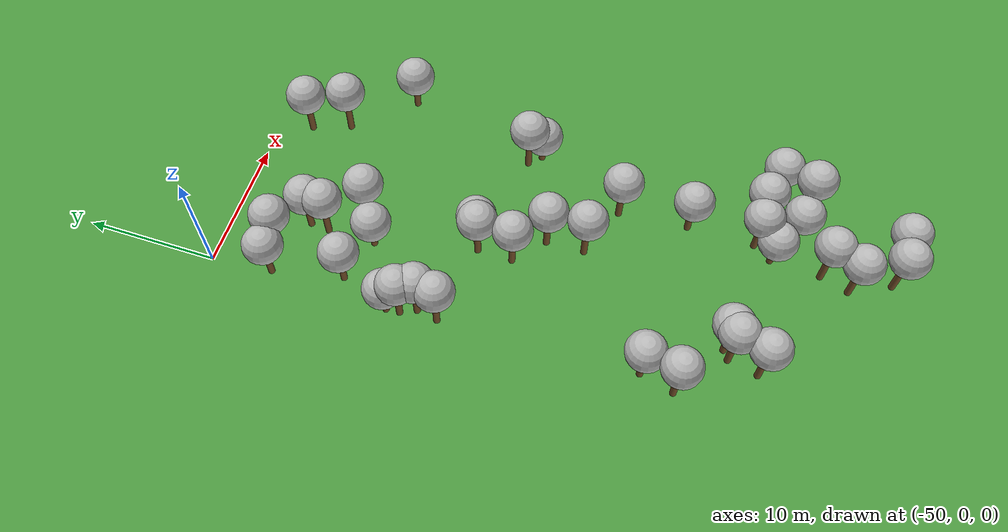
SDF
<sdf version="1.5">
 <world name="default">
  <model name="tree_simple481">
   <static>1</static>
   <link name="link">
    <pose>0 0 0.1 0 -0 0</pose>
    <collision name="collision_trunk">
     <pose>0 0 2 0 -0 0</pose>
     <geometry><cylinder><radius>0.25</radius><length>4</length></cylinder></geometry>
    </collision>
    <collision name="collision_treetop">
     <pose>0 0 5.2 0 -0 0</pose>
     <geometry><sphere><radius>1.5</radius></sphere></geometry>
    </collision>
    <visual name="trunk">
     <pose>0 0 2 0 -0 0</pose>
     <geometry><cylinder><radius>0.25</radius><length>4</length></cylinder></geometry>
     <material>
      <script>
       <uri>model://tree_simple/scripts</uri>
       <uri>model://tree_simple/materials/textures</uri>
       <name>TreeSimple/Trunk</name>
      </script>
     </material>
    </visual>
    <visual name="treetop">
     <pose>0 0 5.2 0 -0 0</pose>
     <geometry><sphere><radius>1.5</radius></sphere></geometry>
     <material>
      <script>
       <uri>model://tree_simple/scripts</uri>
       <uri>model://tree_simple/materials/textures</uri>
       <name>TreeSimple/Treetop</name>
      </script>
     </material>
    </visual>
   </link>
   <pose>-37.2553351017 -39.4739685818 -2.313164512455125 0 -0 0</pose>
  </model>
  <model name="tree_simple438">
   <static>1</static>
   <link name="link">
    <pose>0 0 0.1 0 -0 0</pose>
    <collision name="collision_trunk">
     <pose>0 0 2 0 -0 0</pose>
     <geometry><cylinder><radius>0.25</radius><length>4</length></cylinder></geometry>
    </collision>
    <collision name="collision_treetop">
     <pose>0 0 5.2 0 -0 0</pose>
     <geometry><sphere><radius>1.5</radius></sphere></geometry>
    </collision>
    <visual name="trunk">
     <pose>0 0 2 0 -0 0</pose>
     <geometry><cylinder><radius>0.25</radius><length>4</length></cylinder></geometry>
     <material>
      <script>
       <uri>model://tree_simple/scripts</uri>
       <uri>model://tree_simple/materials/textures</uri>
       <name>TreeSimple/Trunk</name>
      </script>
     </material>
    </visual>
    <visual name="treetop">
     <pose>0 0 5.2 0 -0 0</pose>
     <geometry><sphere><radius>1.5</radius></sphere></geometry>
     <material>
      <script>
       <uri>model://tree_simple/scripts</uri>
       <uri>model://tree_simple/materials/textures</uri>
       <name>TreeSimple/Treetop</name>
      </script>
     </material>
    </visual>
   </link>
   <pose>-34.2898013361 -38.0039942016 -0.9153806781596349 0 -0 0</pose>
  </model>
  <model name="tree_simple434">
   <static>1</static>
   <link name="link">
    <pose>0 0 0.1 0 -0 0</pose>
    <collision name="collision_trunk">
     <pose>0 0 2 0 -0 0</pose>
     <geometry><cylinder><radius>0.25</radius><length>4</length></cylinder></geometry>
    </collision>
    <collision name="collision_treetop">
     <pose>0 0 5.2 0 -0 0</pose>
     <geometry><sphere><radius>1.5</radius></sphere></geometry>
    </collision>
    <visual name="trunk">
     <pose>0 0 2 0 -0 0</pose>
     <geometry><cylinder><radius>0.25</radius><length>4</length></cylinder></geometry>
     <material>
      <script>
       <uri>model://tree_simple/scripts</uri>
       <uri>model://tree_simple/materials/textures</uri>
       <name>TreeSimple/Trunk</name>
      </script>
     </material>
    </visual>
    <visual name="treetop">
     <pose>0 0 5.2 0 -0 0</pose>
     <geometry><sphere><radius>1.5</radius></sphere></geometry>
     <material>
      <script>
       <uri>model://tree_simple/scripts</uri>
       <uri>model://tree_simple/materials/textures</uri>
       <name>TreeSimple/Treetop</name>
      </script>
     </material>
    </visual>
   </link>
   <pose>-43.1297442783 -18.5304452852 -0.9366440924964892 0 -0 0</pose>
  </model>
  <model name="tree_simple416">
   <static>1</static>
   <link name="link">
    <pose>0 0 0.1 0 -0 0</pose>
    <collision name="collision_trunk">
     <pose>0 0 2 0 -0 0</pose>
     <geometry><cylinder><radius>0.25</radius><length>4</length></cylinder></geometry>
    </collision>
    <collision name="collision_treetop">
     <pose>0 0 5.2 0 -0 0</pose>
     <geometry><sphere><radius>1.5</radius></sphere></geometry>
    </collision>
    <visual name="trunk">
     <pose>0 0 2 0 -0 0</pose>
     <geometry><cylinder><radius>0.25</radius><length>4</length></cylinder></geometry>
     <material>
      <script>
       <uri>model://tree_simple/scripts</uri>
       <uri>model://tree_simple/materials/textures</uri>
       <name>TreeSimple/Trunk</name>
      </script>
     </material>
    </visual>
    <visual name="treetop">
     <pose>0 0 5.2 0 -0 0</pose>
     <geometry><sphere><radius>1.5</radius></sphere></geometry>
     <material>
      <script>
       <uri>model://tree_simple/scripts</uri>
       <uri>model://tree_simple/materials/textures</uri>
       <name>TreeSimple/Treetop</name>
      </script>
     </material>
    </visual>
   </link>
   <pose>-31.2795871631 -38.7286210433 -1.627771721147181 0 -0 0</pose>
  </model>
  <model name="tree_simple411">
   <static>1</static>
   <link name="link">
    <pose>0 0 0.1 0 -0 0</pose>
    <collision name="collision_trunk">
     <pose>0 0 2 0 -0 0</pose>
     <geometry><cylinder><radius>0.25</radius><length>4</length></cylinder></geometry>
    </collision>
    <collision name="collision_treetop">
     <pose>0 0 5.2 0 -0 0</pose>
     <geometry><sphere><radius>1.5</radius></sphere></geometry>
    </collision>
    <visual name="trunk">
     <pose>0 0 2 0 -0 0</pose>
     <geometry><cylinder><radius>0.25</radius><length>4</length></cylinder></geometry>
     <material>
      <script>
       <uri>model://tree_simple/scripts</uri>
       <uri>model://tree_simple/materials/textures</uri>
       <name>TreeSimple/Trunk</name>
      </script>
     </material>
    </visual>
    <visual name="treetop">
     <pose>0 0 5.2 0 -0 0</pose>
     <geometry><sphere><radius>1.5</radius></sphere></geometry>
     <material>
      <script>
       <uri>model://tree_simple/scripts</uri>
       <uri>model://tree_simple/materials/textures</uri>
       <name>TreeSimple/Treetop</name>
      </script>
     </material>
    </visual>
   </link>
   <pose>-32.1703266052 -41.1753069034 -0.9134328862668214 0 -0 0</pose>
  </model>
  <model name="tree_simple404">
   <static>1</static>
   <link name="link">
    <pose>0 0 0.1 0 -0 0</pose>
    <collision name="collision_trunk">
     <pose>0 0 2 0 -0 0</pose>
     <geometry><cylinder><radius>0.25</radius><length>4</length></cylinder></geometry>
    </collision>
    <collision name="collision_treetop">
     <pose>0 0 5.2 0 -0 0</pose>
     <geometry><sphere><radius>1.5</radius></sphere></geometry>
    </collision>
    <visual name="trunk">
     <pose>0 0 2 0 -0 0</pose>
     <geometry><cylinder><radius>0.25</radius><length>4</length></cylinder></geometry>
     <material>
      <script>
       <uri>model://tree_simple/scripts</uri>
       <uri>model://tree_simple/materials/textures</uri>
       <name>TreeSimple/Trunk</name>
      </script>
     </material>
    </visual>
    <visual name="treetop">
     <pose>0 0 5.2 0 -0 0</pose>
     <geometry><sphere><radius>1.5</radius></sphere></geometry>
     <material>
      <script>
       <uri>model://tree_simple/scripts</uri>
       <uri>model://tree_simple/materials/textures</uri>
       <name>TreeSimple/Treetop</name>
      </script>
     </material>
    </visual>
   </link>
   <pose>-45.4192895763 -37.6687183978 -1.0170877941080163 0 -0 0</pose>
  </model>
  <model name="tree_simple403">
   <static>1</static>
   <link name="link">
    <pose>0 0 0.1 0 -0 0</pose>
    <collision name="collision_trunk">
     <pose>0 0 2 0 -0 0</pose>
     <geometry><cylinder><radius>0.25</radius><length>4</length></cylinder></geometry>
    </collision>
    <collision name="collision_treetop">
     <pose>0 0 5.2 0 -0 0</pose>
     <geometry><sphere><radius>1.5</radius></sphere></geometry>
    </collision>
    <visual name="trunk">
     <pose>0 0 2 0 -0 0</pose>
     <geometry><cylinder><radius>0.25</radius><length>4</length></cylinder></geometry>
     <material>
      <script>
       <uri>model://tree_simple/scripts</uri>
       <uri>model://tree_simple/materials/textures</uri>
       <name>TreeSimple/Trunk</name>
      </script>
     </material>
    </visual>
    <visual name="treetop">
     <pose>0 0 5.2 0 -0 0</pose>
     <geometry><sphere><radius>1.5</radius></sphere></geometry>
     <material>
      <script>
       <uri>model://tree_simple/scripts</uri>
       <uri>model://tree_simple/materials/textures</uri>
       <name>TreeSimple/Treetop</name>
      </script>
     </material>
    </visual>
   </link>
   <pose>-49.5316989744 -17.555694289 -0.7443259098808109 0 -0 0</pose>
  </model>
  <model name="tree_simple396">
   <static>1</static>
   <link name="link">
    <pose>0 0 0.1 0 -0 0</pose>
    <collision name="collision_trunk">
     <pose>0 0 2 0 -0 0</pose>
     <geometry><cylinder><radius>0.25</radius><length>4</length></cylinder></geometry>
    </collision>
    <collision name="collision_treetop">
     <pose>0 0 5.2 0 -0 0</pose>
     <geometry><sphere><radius>1.5</radius></sphere></geometry>
    </collision>
    <visual name="trunk">
     <pose>0 0 2 0 -0 0</pose>
     <geometry><cylinder><radius>0.25</radius><length>4</length></cylinder></geometry>
     <material>
      <script>
       <uri>model://tree_simple/scripts</uri>
       <uri>model://tree_simple/materials/textures</uri>
       <name>TreeSimple/Trunk</name>
      </script>
     </material>
    </visual>
    <visual name="treetop">
     <pose>0 0 5.2 0 -0 0</pose>
     <geometry><sphere><radius>1.5</radius></sphere></geometry>
     <material>
      <script>
       <uri>model://tree_simple/scripts</uri>
       <uri>model://tree_simple/materials/textures</uri>
       <name>TreeSimple/Treetop</name>
      </script>
     </material>
    </visual>
   </link>
   <pose>-34.4954871255 -19.8377607827 -0.8826998932593024 0 -0 0</pose>
  </model>
  <model name="tree_simple375">
   <static>1</static>
   <link name="link">
    <pose>0 0 0.1 0 -0 0</pose>
    <collision name="collision_trunk">
     <pose>0 0 2 0 -0 0</pose>
     <geometry><cylinder><radius>0.25</radius><length>4</length></cylinder></geometry>
    </collision>
    <collision name="collision_treetop">
     <pose>0 0 5.2 0 -0 0</pose>
     <geometry><sphere><radius>1.5</radius></sphere></geometry>
    </collision>
    <visual name="trunk">
     <pose>0 0 2 0 -0 0</pose>
     <geometry><cylinder><radius>0.25</radius><length>4</length></cylinder></geometry>
     <material>
      <script>
       <uri>model://tree_simple/scripts</uri>
       <uri>model://tree_simple/materials/textures</uri>
       <name>TreeSimple/Trunk</name>
      </script>
     </material>
    </visual>
    <visual name="treetop">
     <pose>0 0 5.2 0 -0 0</pose>
     <geometry><sphere><radius>1.5</radius></sphere></geometry>
     <material>
      <script>
       <uri>model://tree_simple/scripts</uri>
       <uri>model://tree_simple/materials/textures</uri>
       <name>TreeSimple/Treetop</name>
      </script>
     </material>
    </visual>
   </link>
   <pose>-48.3845088934 -9.9079742 -1.4542005847848463 0 -0 0</pose>
  </model>
  <model name="tree_simple373">
   <static>1</static>
   <link name="link">
    <pose>0 0 0.1 0 -0 0</pose>
    <collision name="collision_trunk">
     <pose>0 0 2 0 -0 0</pose>
     <geometry><cylinder><radius>0.25</radius><length>4</length></cylinder></geometry>
    </collision>
    <collision name="collision_treetop">
     <pose>0 0 5.2 0 -0 0</pose>
     <geometry><sphere><radius>1.5</radius></sphere></geometry>
    </collision>
    <visual name="trunk">
     <pose>0 0 2 0 -0 0</pose>
     <geometry><cylinder><radius>0.25</radius><length>4</length></cylinder></geometry>
     <material>
      <script>
       <uri>model://tree_simple/scripts</uri>
       <uri>model://tree_simple/materials/textures</uri>
       <name>TreeSimple/Trunk</name>
      </script>
     </material>
    </visual>
    <visual name="treetop">
     <pose>0 0 5.2 0 -0 0</pose>
     <geometry><sphere><radius>1.5</radius></sphere></geometry>
     <material>
      <script>
       <uri>model://tree_simple/scripts</uri>
       <uri>model://tree_simple/materials/textures</uri>
       <name>TreeSimple/Treetop</name>
      </script>
     </material>
    </visual>
   </link>
   <pose>-43.1842610619 -21.2191114712 -0.9189660849182042 0 -0 0</pose>
  </model>
  <model name="tree_simple370">
   <static>1</static>
   <link name="link">
    <pose>0 0 0.1 0 -0 0</pose>
    <collision name="collision_trunk">
     <pose>0 0 2 0 -0 0</pose>
     <geometry><cylinder><radius>0.25</radius><length>4</length></cylinder></geometry>
    </collision>
    <collision name="collision_treetop">
     <pose>0 0 5.2 0 -0 0</pose>
     <geometry><sphere><radius>1.5</radius></sphere></geometry>
    </collision>
    <visual name="trunk">
     <pose>0 0 2 0 -0 0</pose>
     <geometry><cylinder><radius>0.25</radius><length>4</length></cylinder></geometry>
     <material>
      <script>
       <uri>model://tree_simple/scripts</uri>
       <uri>model://tree_simple/materials/textures</uri>
       <name>TreeSimple/Trunk</name>
      </script>
     </material>
    </visual>
    <visual name="treetop">
     <pose>0 0 5.2 0 -0 0</pose>
     <geometry><sphere><radius>1.5</radius></sphere></geometry>
     <material>
      <script>
       <uri>model://tree_simple/scripts</uri>
       <uri>model://tree_simple/materials/textures</uri>
       <name>TreeSimple/Treetop</name>
      </script>
     </material>
    </visual>
   </link>
   <pose>-36.749040883 -27.7198172667 -1.007611005489163 0 -0 0</pose>
  </model>
  <model name="tree_simple369">
   <static>1</static>
   <link name="link">
    <pose>0 0 0.1 0 -0 0</pose>
    <collision name="collision_trunk">
     <pose>0 0 2 0 -0 0</pose>
     <geometry><cylinder><radius>0.25</radius><length>4</length></cylinder></geometry>
    </collision>
    <collision name="collision_treetop">
     <pose>0 0 5.2 0 -0 0</pose>
     <geometry><sphere><radius>1.5</radius></sphere></geometry>
    </collision>
    <visual name="trunk">
     <pose>0 0 2 0 -0 0</pose>
     <geometry><cylinder><radius>0.25</radius><length>4</length></cylinder></geometry>
     <material>
      <script>
       <uri>model://tree_simple/scripts</uri>
       <uri>model://tree_simple/materials/textures</uri>
       <name>TreeSimple/Trunk</name>
      </script>
     </material>
    </visual>
    <visual name="treetop">
     <pose>0 0 5.2 0 -0 0</pose>
     <geometry><sphere><radius>1.5</radius></sphere></geometry>
     <material>
      <script>
       <uri>model://tree_simple/scripts</uri>
       <uri>model://tree_simple/materials/textures</uri>
       <name>TreeSimple/Treetop</name>
      </script>
     </material>
    </visual>
   </link>
   <pose>-40.8904214301 -23.21757156 -0.949616824688744 0 -0 0</pose>
  </model>
  <model name="tree_simple341">
   <static>1</static>
   <link name="link">
    <pose>0 0 0.1 0 -0 0</pose>
    <collision name="collision_trunk">
     <pose>0 0 2 0 -0 0</pose>
     <geometry><cylinder><radius>0.25</radius><length>4</length></cylinder></geometry>
    </collision>
    <collision name="collision_treetop">
     <pose>0 0 5.2 0 -0 0</pose>
     <geometry><sphere><radius>1.5</radius></sphere></geometry>
    </collision>
    <visual name="trunk">
     <pose>0 0 2 0 -0 0</pose>
     <geometry><cylinder><radius>0.25</radius><length>4</length></cylinder></geometry>
     <material>
      <script>
       <uri>model://tree_simple/scripts</uri>
       <uri>model://tree_simple/materials/textures</uri>
       <name>TreeSimple/Trunk</name>
      </script>
     </material>
    </visual>
    <visual name="treetop">
     <pose>0 0 5.2 0 -0 0</pose>
     <geometry><sphere><radius>1.5</radius></sphere></geometry>
     <material>
      <script>
       <uri>model://tree_simple/scripts</uri>
       <uri>model://tree_simple/materials/textures</uri>
       <name>TreeSimple/Treetop</name>
      </script>
     </material>
    </visual>
   </link>
   <pose>-49.5073976614 -4.58498276765 -1.3666572870901617 0 -0 0</pose>
  </model>
  <model name="tree_simple326">
   <static>1</static>
   <link name="link">
    <pose>0 0 0.1 0 -0 0</pose>
    <collision name="collision_trunk">
     <pose>0 0 2 0 -0 0</pose>
     <geometry><cylinder><radius>0.25</radius><length>4</length></cylinder></geometry>
    </collision>
    <collision name="collision_treetop">
     <pose>0 0 5.2 0 -0 0</pose>
     <geometry><sphere><radius>1.5</radius></sphere></geometry>
    </collision>
    <visual name="trunk">
     <pose>0 0 2 0 -0 0</pose>
     <geometry><cylinder><radius>0.25</radius><length>4</length></cylinder></geometry>
     <material>
      <script>
       <uri>model://tree_simple/scripts</uri>
       <uri>model://tree_simple/materials/textures</uri>
       <name>TreeSimple/Trunk</name>
      </script>
     </material>
    </visual>
    <visual name="treetop">
     <pose>0 0 5.2 0 -0 0</pose>
     <geometry><sphere><radius>1.5</radius></sphere></geometry>
     <material>
      <script>
       <uri>model://tree_simple/scripts</uri>
       <uri>model://tree_simple/materials/textures</uri>
       <name>TreeSimple/Treetop</name>
      </script>
     </material>
    </visual>
   </link>
   <pose>-44.8519520945 -5.80439962373 -1.1698280542827606 0 -0 0</pose>
  </model>
  <model name="tree_simple323">
   <static>1</static>
   <link name="link">
    <pose>0 0 0.1 0 -0 0</pose>
    <collision name="collision_trunk">
     <pose>0 0 2 0 -0 0</pose>
     <geometry><cylinder><radius>0.25</radius><length>4</length></cylinder></geometry>
    </collision>
    <collision name="collision_treetop">
     <pose>0 0 5.2 0 -0 0</pose>
     <geometry><sphere><radius>1.5</radius></sphere></geometry>
    </collision>
    <visual name="trunk">
     <pose>0 0 2 0 -0 0</pose>
     <geometry><cylinder><radius>0.25</radius><length>4</length></cylinder></geometry>
     <material>
      <script>
       <uri>model://tree_simple/scripts</uri>
       <uri>model://tree_simple/materials/textures</uri>
       <name>TreeSimple/Trunk</name>
      </script>
     </material>
    </visual>
    <visual name="treetop">
     <pose>0 0 5.2 0 -0 0</pose>
     <geometry><sphere><radius>1.5</radius></sphere></geometry>
     <material>
      <script>
       <uri>model://tree_simple/scripts</uri>
       <uri>model://tree_simple/materials/textures</uri>
       <name>TreeSimple/Treetop</name>
      </script>
     </material>
    </visual>
   </link>
   <pose>-44.9542016132 -10.9647646888 -2.196456673396539 0 -0 0</pose>
  </model>
  <model name="tree_simple318">
   <static>1</static>
   <link name="link">
    <pose>0 0 0.1 0 -0 0</pose>
    <collision name="collision_trunk">
     <pose>0 0 2 0 -0 0</pose>
     <geometry><cylinder><radius>0.25</radius><length>4</length></cylinder></geometry>
    </collision>
    <collision name="collision_treetop">
     <pose>0 0 5.2 0 -0 0</pose>
     <geometry><sphere><radius>1.5</radius></sphere></geometry>
    </collision>
    <visual name="trunk">
     <pose>0 0 2 0 -0 0</pose>
     <geometry><cylinder><radius>0.25</radius><length>4</length></cylinder></geometry>
     <material>
      <script>
       <uri>model://tree_simple/scripts</uri>
       <uri>model://tree_simple/materials/textures</uri>
       <name>TreeSimple/Trunk</name>
      </script>
     </material>
    </visual>
    <visual name="treetop">
     <pose>0 0 5.2 0 -0 0</pose>
     <geometry><sphere><radius>1.5</radius></sphere></geometry>
     <material>
      <script>
       <uri>model://tree_simple/scripts</uri>
       <uri>model://tree_simple/materials/textures</uri>
       <name>TreeSimple/Treetop</name>
      </script>
     </material>
    </visual>
   </link>
   <pose>-35.5307244579 -5.31130875944 -0.7693628341063821 0 -0 0</pose>
  </model>
  <model name="tree_simple312">
   <static>1</static>
   <link name="link">
    <pose>0 0 0.1 0 -0 0</pose>
    <collision name="collision_trunk">
     <pose>0 0 2 0 -0 0</pose>
     <geometry><cylinder><radius>0.25</radius><length>4</length></cylinder></geometry>
    </collision>
    <collision name="collision_treetop">
     <pose>0 0 5.2 0 -0 0</pose>
     <geometry><sphere><radius>1.5</radius></sphere></geometry>
    </collision>
    <visual name="trunk">
     <pose>0 0 2 0 -0 0</pose>
     <geometry><cylinder><radius>0.25</radius><length>4</length></cylinder></geometry>
     <material>
      <script>
       <uri>model://tree_simple/scripts</uri>
       <uri>model://tree_simple/materials/textures</uri>
       <name>TreeSimple/Trunk</name>
      </script>
     </material>
    </visual>
    <visual name="treetop">
     <pose>0 0 5.2 0 -0 0</pose>
     <geometry><sphere><radius>1.5</radius></sphere></geometry>
     <material>
      <script>
       <uri>model://tree_simple/scripts</uri>
       <uri>model://tree_simple/materials/textures</uri>
       <name>TreeSimple/Treetop</name>
      </script>
     </material>
    </visual>
   </link>
   <pose>-49.0127914394 -32.4704975261 -1.4051616145183206 0 -0 0</pose>
  </model>
  <model name="tree_simple259">
   <static>1</static>
   <link name="link">
    <pose>0 0 0.1 0 -0 0</pose>
    <collision name="collision_trunk">
     <pose>0 0 2 0 -0 0</pose>
     <geometry><cylinder><radius>0.25</radius><length>4</length></cylinder></geometry>
    </collision>
    <collision name="collision_treetop">
     <pose>0 0 5.2 0 -0 0</pose>
     <geometry><sphere><radius>1.5</radius></sphere></geometry>
    </collision>
    <visual name="trunk">
     <pose>0 0 2 0 -0 0</pose>
     <geometry><cylinder><radius>0.25</radius><length>4</length></cylinder></geometry>
     <material>
      <script>
       <uri>model://tree_simple/scripts</uri>
       <uri>model://tree_simple/materials/textures</uri>
       <name>TreeSimple/Trunk</name>
      </script>
     </material>
    </visual>
    <visual name="treetop">
     <pose>0 0 5.2 0 -0 0</pose>
     <geometry><sphere><radius>1.5</radius></sphere></geometry>
     <material>
      <script>
       <uri>model://tree_simple/scripts</uri>
       <uri>model://tree_simple/materials/textures</uri>
       <name>TreeSimple/Treetop</name>
      </script>
     </material>
    </visual>
   </link>
   <pose>-49.2281564384 -15.9494105315 -0.9402194334918634 0 -0 0</pose>
  </model>
  <model name="tree_simple250">
   <static>1</static>
   <link name="link">
    <pose>0 0 0.1 0 -0 0</pose>
    <collision name="collision_trunk">
     <pose>0 0 2 0 -0 0</pose>
     <geometry><cylinder><radius>0.25</radius><length>4</length></cylinder></geometry>
    </collision>
    <collision name="collision_treetop">
     <pose>0 0 5.2 0 -0 0</pose>
     <geometry><sphere><radius>1.5</radius></sphere></geometry>
    </collision>
    <visual name="trunk">
     <pose>0 0 2 0 -0 0</pose>
     <geometry><cylinder><radius>0.25</radius><length>4</length></cylinder></geometry>
     <material>
      <script>
       <uri>model://tree_simple/scripts</uri>
       <uri>model://tree_simple/materials/textures</uri>
       <name>TreeSimple/Trunk</name>
      </script>
     </material>
    </visual>
    <visual name="treetop">
     <pose>0 0 5.2 0 -0 0</pose>
     <geometry><sphere><radius>1.5</radius></sphere></geometry>
     <material>
      <script>
       <uri>model://tree_simple/scripts</uri>
       <uri>model://tree_simple/materials/textures</uri>
       <name>TreeSimple/Treetop</name>
      </script>
     </material>
    </visual>
   </link>
   <pose>-33.6030138898 -48.597626204 -2.32099633214339 0 -0 0</pose>
  </model>
  <model name="tree_simple241">
   <static>1</static>
   <link name="link">
    <pose>0 0 0.1 0 -0 0</pose>
    <collision name="collision_trunk">
     <pose>0 0 2 0 -0 0</pose>
     <geometry><cylinder><radius>0.25</radius><length>4</length></cylinder></geometry>
    </collision>
    <collision name="collision_treetop">
     <pose>0 0 5.2 0 -0 0</pose>
     <geometry><sphere><radius>1.5</radius></sphere></geometry>
    </collision>
    <visual name="trunk">
     <pose>0 0 2 0 -0 0</pose>
     <geometry><cylinder><radius>0.25</radius><length>4</length></cylinder></geometry>
     <material>
      <script>
       <uri>model://tree_simple/scripts</uri>
       <uri>model://tree_simple/materials/textures</uri>
       <name>TreeSimple/Trunk</name>
      </script>
     </material>
    </visual>
    <visual name="treetop">
     <pose>0 0 5.2 0 -0 0</pose>
     <geometry><sphere><radius>1.5</radius></sphere></geometry>
     <material>
      <script>
       <uri>model://tree_simple/scripts</uri>
       <uri>model://tree_simple/materials/textures</uri>
       <name>TreeSimple/Treetop</name>
      </script>
     </material>
    </visual>
   </link>
   <pose>-37.439891657 -43.2397532509 -0.7600741558034647 0 -0 0</pose>
  </model>
  <model name="tree_simple240">
   <static>1</static>
   <link name="link">
    <pose>0 0 0.1 0 -0 0</pose>
    <collision name="collision_trunk">
     <pose>0 0 2 0 -0 0</pose>
     <geometry><cylinder><radius>0.25</radius><length>4</length></cylinder></geometry>
    </collision>
    <collision name="collision_treetop">
     <pose>0 0 5.2 0 -0 0</pose>
     <geometry><sphere><radius>1.5</radius></sphere></geometry>
    </collision>
    <visual name="trunk">
     <pose>0 0 2 0 -0 0</pose>
     <geometry><cylinder><radius>0.25</radius><length>4</length></cylinder></geometry>
     <material>
      <script>
       <uri>model://tree_simple/scripts</uri>
       <uri>model://tree_simple/materials/textures</uri>
       <name>TreeSimple/Trunk</name>
      </script>
     </material>
    </visual>
    <visual name="treetop">
     <pose>0 0 5.2 0 -0 0</pose>
     <geometry><sphere><radius>1.5</radius></sphere></geometry>
     <material>
      <script>
       <uri>model://tree_simple/scripts</uri>
       <uri>model://tree_simple/materials/textures</uri>
       <name>TreeSimple/Treetop</name>
      </script>
     </material>
    </visual>
   </link>
   <pose>-49.7673729573 -14.7908164176 -0.9803421155893535 0 -0 0</pose>
  </model>
  <model name="tree_simple239">
   <static>1</static>
   <link name="link">
    <pose>0 0 0.1 0 -0 0</pose>
    <collision name="collision_trunk">
     <pose>0 0 2 0 -0 0</pose>
     <geometry><cylinder><radius>0.25</radius><length>4</length></cylinder></geometry>
    </collision>
    <collision name="collision_treetop">
     <pose>0 0 5.2 0 -0 0</pose>
     <geometry><sphere><radius>1.5</radius></sphere></geometry>
    </collision>
    <visual name="trunk">
     <pose>0 0 2 0 -0 0</pose>
     <geometry><cylinder><radius>0.25</radius><length>4</length></cylinder></geometry>
     <material>
      <script>
       <uri>model://tree_simple/scripts</uri>
       <uri>model://tree_simple/materials/textures</uri>
       <name>TreeSimple/Trunk</name>
      </script>
     </material>
    </visual>
    <visual name="treetop">
     <pose>0 0 5.2 0 -0 0</pose>
     <geometry><sphere><radius>1.5</radius></sphere></geometry>
     <material>
      <script>
       <uri>model://tree_simple/scripts</uri>
       <uri>model://tree_simple/materials/textures</uri>
       <name>TreeSimple/Treetop</name>
      </script>
     </material>
    </visual>
   </link>
   <pose>-44.9803872855 -7.28495240751 -0.7925013824825821 0 -0 0</pose>
  </model>
  <model name="tree_simple221">
   <static>1</static>
   <link name="link">
    <pose>0 0 0.1 0 -0 0</pose>
    <collision name="collision_trunk">
     <pose>0 0 2 0 -0 0</pose>
     <geometry><cylinder><radius>0.25</radius><length>4</length></cylinder></geometry>
    </collision>
    <collision name="collision_treetop">
     <pose>0 0 5.2 0 -0 0</pose>
     <geometry><sphere><radius>1.5</radius></sphere></geometry>
    </collision>
    <visual name="trunk">
     <pose>0 0 2 0 -0 0</pose>
     <geometry><cylinder><radius>0.25</radius><length>4</length></cylinder></geometry>
     <material>
      <script>
       <uri>model://tree_simple/scripts</uri>
       <uri>model://tree_simple/materials/textures</uri>
       <name>TreeSimple/Trunk</name>
      </script>
     </material>
    </visual>
    <visual name="treetop">
     <pose>0 0 5.2 0 -0 0</pose>
     <geometry><sphere><radius>1.5</radius></sphere></geometry>
     <material>
      <script>
       <uri>model://tree_simple/scripts</uri>
       <uri>model://tree_simple/materials/textures</uri>
       <name>TreeSimple/Treetop</name>
      </script>
     </material>
    </visual>
   </link>
   <pose>-33.630014063 -20.7003393039 -2.4559381929885666 0 -0 0</pose>
  </model>
  <model name="tree_simple220">
   <static>1</static>
   <link name="link">
    <pose>0 0 0.1 0 -0 0</pose>
    <collision name="collision_trunk">
     <pose>0 0 2 0 -0 0</pose>
     <geometry><cylinder><radius>0.25</radius><length>4</length></cylinder></geometry>
    </collision>
    <collision name="collision_treetop">
     <pose>0 0 5.2 0 -0 0</pose>
     <geometry><sphere><radius>1.5</radius></sphere></geometry>
    </collision>
    <visual name="trunk">
     <pose>0 0 2 0 -0 0</pose>
     <geometry><cylinder><radius>0.25</radius><length>4</length></cylinder></geometry>
     <material>
      <script>
       <uri>model://tree_simple/scripts</uri>
       <uri>model://tree_simple/materials/textures</uri>
       <name>TreeSimple/Trunk</name>
      </script>
     </material>
    </visual>
    <visual name="treetop">
     <pose>0 0 5.2 0 -0 0</pose>
     <geometry><sphere><radius>1.5</radius></sphere></geometry>
     <material>
      <script>
       <uri>model://tree_simple/scripts</uri>
       <uri>model://tree_simple/materials/textures</uri>
       <name>TreeSimple/Treetop</name>
      </script>
     </material>
    </visual>
   </link>
   <pose>-36.5535815793 -2.43279627312 -1.0244802533006583 0 -0 0</pose>
  </model>
  <model name="tree_simple212">
   <static>1</static>
   <link name="link">
    <pose>0 0 0.1 0 -0 0</pose>
    <collision name="collision_trunk">
     <pose>0 0 2 0 -0 0</pose>
     <geometry><cylinder><radius>0.25</radius><length>4</length></cylinder></geometry>
    </collision>
    <collision name="collision_treetop">
     <pose>0 0 5.2 0 -0 0</pose>
     <geometry><sphere><radius>1.5</radius></sphere></geometry>
    </collision>
    <visual name="trunk">
     <pose>0 0 2 0 -0 0</pose>
     <geometry><cylinder><radius>0.25</radius><length>4</length></cylinder></geometry>
     <material>
      <script>
       <uri>model://tree_simple/scripts</uri>
       <uri>model://tree_simple/materials/textures</uri>
       <name>TreeSimple/Trunk</name>
      </script>
     </material>
    </visual>
    <visual name="treetop">
     <pose>0 0 5.2 0 -0 0</pose>
     <geometry><sphere><radius>1.5</radius></sphere></geometry>
     <material>
      <script>
       <uri>model://tree_simple/scripts</uri>
       <uri>model://tree_simple/materials/textures</uri>
       <name>TreeSimple/Treetop</name>
      </script>
     </material>
    </visual>
   </link>
   <pose>-40.8079801591 -26.1075975904 -0.714876311338958 0 -0 0</pose>
  </model>
  <model name="tree_simple193">
   <static>1</static>
   <link name="link">
    <pose>0 0 0.1 0 -0 0</pose>
    <collision name="collision_trunk">
     <pose>0 0 2 0 -0 0</pose>
     <geometry><cylinder><radius>0.25</radius><length>4</length></cylinder></geometry>
    </collision>
    <collision name="collision_treetop">
     <pose>0 0 5.2 0 -0 0</pose>
     <geometry><sphere><radius>1.5</radius></sphere></geometry>
    </collision>
    <visual name="trunk">
     <pose>0 0 2 0 -0 0</pose>
     <geometry><cylinder><radius>0.25</radius><length>4</length></cylinder></geometry>
     <material>
      <script>
       <uri>model://tree_simple/scripts</uri>
       <uri>model://tree_simple/materials/textures</uri>
       <name>TreeSimple/Trunk</name>
      </script>
     </material>
    </visual>
    <visual name="treetop">
     <pose>0 0 5.2 0 -0 0</pose>
     <geometry><sphere><radius>1.5</radius></sphere></geometry>
     <material>
      <script>
       <uri>model://tree_simple/scripts</uri>
       <uri>model://tree_simple/materials/textures</uri>
       <name>TreeSimple/Treetop</name>
      </script>
     </material>
    </visual>
   </link>
   <pose>-38.0891263237 -45.387736402 -0.9688991361945178 0 -0 0</pose>
  </model>
  <model name="tree_simple176">
   <static>1</static>
   <link name="link">
    <pose>0 0 0.1 0 -0 0</pose>
    <collision name="collision_trunk">
     <pose>0 0 2 0 -0 0</pose>
     <geometry><cylinder><radius>0.25</radius><length>4</length></cylinder></geometry>
    </collision>
    <collision name="collision_treetop">
     <pose>0 0 5.2 0 -0 0</pose>
     <geometry><sphere><radius>1.5</radius></sphere></geometry>
    </collision>
    <visual name="trunk">
     <pose>0 0 2 0 -0 0</pose>
     <geometry><cylinder><radius>0.25</radius><length>4</length></cylinder></geometry>
     <material>
      <script>
       <uri>model://tree_simple/scripts</uri>
       <uri>model://tree_simple/materials/textures</uri>
       <name>TreeSimple/Trunk</name>
      </script>
     </material>
    </visual>
    <visual name="treetop">
     <pose>0 0 5.2 0 -0 0</pose>
     <geometry><sphere><radius>1.5</radius></sphere></geometry>
     <material>
      <script>
       <uri>model://tree_simple/scripts</uri>
       <uri>model://tree_simple/materials/textures</uri>
       <name>TreeSimple/Treetop</name>
      </script>
     </material>
    </visual>
   </link>
   <pose>-34.4242902166 -40.9558999471 -2.3872662400913205 0 -0 0</pose>
  </model>
  <model name="tree_simple172">
   <static>1</static>
   <link name="link">
    <pose>0 0 0.1 0 -0 0</pose>
    <collision name="collision_trunk">
     <pose>0 0 2 0 -0 0</pose>
     <geometry><cylinder><radius>0.25</radius><length>4</length></cylinder></geometry>
    </collision>
    <collision name="collision_treetop">
     <pose>0 0 5.2 0 -0 0</pose>
     <geometry><sphere><radius>1.5</radius></sphere></geometry>
    </collision>
    <visual name="trunk">
     <pose>0 0 2 0 -0 0</pose>
     <geometry><cylinder><radius>0.25</radius><length>4</length></cylinder></geometry>
     <material>
      <script>
       <uri>model://tree_simple/scripts</uri>
       <uri>model://tree_simple/materials/textures</uri>
       <name>TreeSimple/Trunk</name>
      </script>
     </material>
    </visual>
    <visual name="treetop">
     <pose>0 0 5.2 0 -0 0</pose>
     <geometry><sphere><radius>1.5</radius></sphere></geometry>
     <material>
      <script>
       <uri>model://tree_simple/scripts</uri>
       <uri>model://tree_simple/materials/textures</uri>
       <name>TreeSimple/Treetop</name>
      </script>
     </material>
    </visual>
   </link>
   <pose>-36.3388025574 -38.096874475 -1.265513670634136 0 -0 0</pose>
  </model>
  <model name="tree_simple171">
   <static>1</static>
   <link name="link">
    <pose>0 0 0.1 0 -0 0</pose>
    <collision name="collision_trunk">
     <pose>0 0 2 0 -0 0</pose>
     <geometry><cylinder><radius>0.25</radius><length>4</length></cylinder></geometry>
    </collision>
    <collision name="collision_treetop">
     <pose>0 0 5.2 0 -0 0</pose>
     <geometry><sphere><radius>1.5</radius></sphere></geometry>
    </collision>
    <visual name="trunk">
     <pose>0 0 2 0 -0 0</pose>
     <geometry><cylinder><radius>0.25</radius><length>4</length></cylinder></geometry>
     <material>
      <script>
       <uri>model://tree_simple/scripts</uri>
       <uri>model://tree_simple/materials/textures</uri>
       <name>TreeSimple/Trunk</name>
      </script>
     </material>
    </visual>
    <visual name="treetop">
     <pose>0 0 5.2 0 -0 0</pose>
     <geometry><sphere><radius>1.5</radius></sphere></geometry>
     <material>
      <script>
       <uri>model://tree_simple/scripts</uri>
       <uri>model://tree_simple/materials/textures</uri>
       <name>TreeSimple/Treetop</name>
      </script>
     </material>
    </visual>
   </link>
   <pose>-47.4177148869 -4.27301626353 -0.7047581811777645 0 -0 0</pose>
  </model>
  <model name="tree_simple146">
   <static>1</static>
   <link name="link">
    <pose>0 0 0.1 0 -0 0</pose>
    <collision name="collision_trunk">
     <pose>0 0 2 0 -0 0</pose>
     <geometry><cylinder><radius>0.25</radius><length>4</length></cylinder></geometry>
    </collision>
    <collision name="collision_treetop">
     <pose>0 0 5.2 0 -0 0</pose>
     <geometry><sphere><radius>1.5</radius></sphere></geometry>
    </collision>
    <visual name="trunk">
     <pose>0 0 2 0 -0 0</pose>
     <geometry><cylinder><radius>0.25</radius><length>4</length></cylinder></geometry>
     <material>
      <script>
       <uri>model://tree_simple/scripts</uri>
       <uri>model://tree_simple/materials/textures</uri>
       <name>TreeSimple/Trunk</name>
      </script>
     </material>
    </visual>
    <visual name="treetop">
     <pose>0 0 5.2 0 -0 0</pose>
     <geometry><sphere><radius>1.5</radius></sphere></geometry>
     <material>
      <script>
       <uri>model://tree_simple/scripts</uri>
       <uri>model://tree_simple/materials/textures</uri>
       <name>TreeSimple/Treetop</name>
      </script>
     </material>
    </visual>
   </link>
   <pose>-42.8686467761 -9.68210025238 -0.7750451728388399 0 -0 0</pose>
  </model>
  <model name="tree_simple129">
   <static>1</static>
   <link name="link">
    <pose>0 0 0.1 0 -0 0</pose>
    <collision name="collision_trunk">
     <pose>0 0 2 0 -0 0</pose>
     <geometry><cylinder><radius>0.25</radius><length>4</length></cylinder></geometry>
    </collision>
    <collision name="collision_treetop">
     <pose>0 0 5.2 0 -0 0</pose>
     <geometry><sphere><radius>1.5</radius></sphere></geometry>
    </collision>
    <visual name="trunk">
     <pose>0 0 2 0 -0 0</pose>
     <geometry><cylinder><radius>0.25</radius><length>4</length></cylinder></geometry>
     <material>
      <script>
       <uri>model://tree_simple/scripts</uri>
       <uri>model://tree_simple/materials/textures</uri>
       <name>TreeSimple/Trunk</name>
      </script>
     </material>
    </visual>
    <visual name="treetop">
     <pose>0 0 5.2 0 -0 0</pose>
     <geometry><sphere><radius>1.5</radius></sphere></geometry>
     <material>
      <script>
       <uri>model://tree_simple/scripts</uri>
       <uri>model://tree_simple/materials/textures</uri>
       <name>TreeSimple/Treetop</name>
      </script>
     </material>
    </visual>
   </link>
   <pose>-46.082766629 -38.1150560833 -0.6550352667928161 0 -0 0</pose>
  </model>
  <model name="tree_simple91">
   <static>1</static>
   <link name="link">
    <pose>0 0 0.1 0 -0 0</pose>
    <collision name="collision_trunk">
     <pose>0 0 2 0 -0 0</pose>
     <geometry><cylinder><radius>0.25</radius><length>4</length></cylinder></geometry>
    </collision>
    <collision name="collision_treetop">
     <pose>0 0 5.2 0 -0 0</pose>
     <geometry><sphere><radius>1.5</radius></sphere></geometry>
    </collision>
    <visual name="trunk">
     <pose>0 0 2 0 -0 0</pose>
     <geometry><cylinder><radius>0.25</radius><length>4</length></cylinder></geometry>
     <material>
      <script>
       <uri>model://tree_simple/scripts</uri>
       <uri>model://tree_simple/materials/textures</uri>
       <name>TreeSimple/Trunk</name>
      </script>
     </material>
    </visual>
    <visual name="treetop">
     <pose>0 0 5.2 0 -0 0</pose>
     <geometry><sphere><radius>1.5</radius></sphere></geometry>
     <material>
      <script>
       <uri>model://tree_simple/scripts</uri>
       <uri>model://tree_simple/materials/textures</uri>
       <name>TreeSimple/Treetop</name>
      </script>
     </material>
    </visual>
   </link>
   <pose>-49.8341450527 -13.7707098392 -2.0850228115252243 0 -0 0</pose>
  </model>
  <model name="tree_simple83">
   <static>1</static>
   <link name="link">
    <pose>0 0 0.1 0 -0 0</pose>
    <collision name="collision_trunk">
     <pose>0 0 2 0 -0 0</pose>
     <geometry><cylinder><radius>0.25</radius><length>4</length></cylinder></geometry>
    </collision>
    <collision name="collision_treetop">
     <pose>0 0 5.2 0 -0 0</pose>
     <geometry><sphere><radius>1.5</radius></sphere></geometry>
    </collision>
    <visual name="trunk">
     <pose>0 0 2 0 -0 0</pose>
     <geometry><cylinder><radius>0.25</radius><length>4</length></cylinder></geometry>
     <material>
      <script>
       <uri>model://tree_simple/scripts</uri>
       <uri>model://tree_simple/materials/textures</uri>
       <name>TreeSimple/Trunk</name>
      </script>
     </material>
    </visual>
    <visual name="treetop">
     <pose>0 0 5.2 0 -0 0</pose>
     <geometry><sphere><radius>1.5</radius></sphere></geometry>
     <material>
      <script>
       <uri>model://tree_simple/scripts</uri>
       <uri>model://tree_simple/materials/textures</uri>
       <name>TreeSimple/Treetop</name>
      </script>
     </material>
    </visual>
   </link>
   <pose>-49.6712926958 -35.0160914231 -0.8156066141273399 0 -0 0</pose>
  </model>
  <model name="tree_simple75">
   <static>1</static>
   <link name="link">
    <pose>0 0 0.1 0 -0 0</pose>
    <collision name="collision_trunk">
     <pose>0 0 2 0 -0 0</pose>
     <geometry><cylinder><radius>0.25</radius><length>4</length></cylinder></geometry>
    </collision>
    <collision name="collision_treetop">
     <pose>0 0 5.2 0 -0 0</pose>
     <geometry><sphere><radius>1.5</radius></sphere></geometry>
    </collision>
    <visual name="trunk">
     <pose>0 0 2 0 -0 0</pose>
     <geometry><cylinder><radius>0.25</radius><length>4</length></cylinder></geometry>
     <material>
      <script>
       <uri>model://tree_simple/scripts</uri>
       <uri>model://tree_simple/materials/textures</uri>
       <name>TreeSimple/Trunk</name>
      </script>
     </material>
    </visual>
    <visual name="treetop">
     <pose>0 0 5.2 0 -0 0</pose>
     <geometry><sphere><radius>1.5</radius></sphere></geometry>
     <material>
      <script>
       <uri>model://tree_simple/scripts</uri>
       <uri>model://tree_simple/materials/textures</uri>
       <name>TreeSimple/Treetop</name>
      </script>
     </material>
    </visual>
   </link>
   <pose>-42.3546026357 -18.1931921773 -1.6735727337780923 0 -0 0</pose>
  </model>
  <model name="tree_simple67">
   <static>1</static>
   <link name="link">
    <pose>0 0 0.1 0 -0 0</pose>
    <collision name="collision_trunk">
     <pose>0 0 2 0 -0 0</pose>
     <geometry><cylinder><radius>0.25</radius><length>4</length></cylinder></geometry>
    </collision>
    <collision name="collision_treetop">
     <pose>0 0 5.2 0 -0 0</pose>
     <geometry><sphere><radius>1.5</radius></sphere></geometry>
    </collision>
    <visual name="trunk">
     <pose>0 0 2 0 -0 0</pose>
     <geometry><cylinder><radius>0.25</radius><length>4</length></cylinder></geometry>
     <material>
      <script>
       <uri>model://tree_simple/scripts</uri>
       <uri>model://tree_simple/materials/textures</uri>
       <name>TreeSimple/Trunk</name>
      </script>
     </material>
    </visual>
    <visual name="treetop">
     <pose>0 0 5.2 0 -0 0</pose>
     <geometry><sphere><radius>1.5</radius></sphere></geometry>
     <material>
      <script>
       <uri>model://tree_simple/scripts</uri>
       <uri>model://tree_simple/materials/textures</uri>
       <name>TreeSimple/Treetop</name>
      </script>
     </material>
    </visual>
   </link>
   <pose>-36.6256451993 -48.3909294088 -0.9931027069035343 0 -0 0</pose>
  </model>
  <model name="tree_simple62">
   <static>1</static>
   <link name="link">
    <pose>0 0 0.1 0 -0 0</pose>
    <collision name="collision_trunk">
     <pose>0 0 2 0 -0 0</pose>
     <geometry><cylinder><radius>0.25</radius><length>4</length></cylinder></geometry>
    </collision>
    <collision name="collision_treetop">
     <pose>0 0 5.2 0 -0 0</pose>
     <geometry><sphere><radius>1.5</radius></sphere></geometry>
    </collision>
    <visual name="trunk">
     <pose>0 0 2 0 -0 0</pose>
     <geometry><cylinder><radius>0.25</radius><length>4</length></cylinder></geometry>
     <material>
      <script>
       <uri>model://tree_simple/scripts</uri>
       <uri>model://tree_simple/materials/textures</uri>
       <name>TreeSimple/Trunk</name>
      </script>
     </material>
    </visual>
    <visual name="treetop">
     <pose>0 0 5.2 0 -0 0</pose>
     <geometry><sphere><radius>1.5</radius></sphere></geometry>
     <material>
      <script>
       <uri>model://tree_simple/scripts</uri>
       <uri>model://tree_simple/materials/textures</uri>
       <name>TreeSimple/Treetop</name>
      </script>
     </material>
    </visual>
   </link>
   <pose>-31.7033167044 -9.58889275635 -1.7845648660976026 0 -0 0</pose>
  </model>
  <model name="tree_simple41">
   <static>1</static>
   <link name="link">
    <pose>0 0 0.1 0 -0 0</pose>
    <collision name="collision_trunk">
     <pose>0 0 2 0 -0 0</pose>
     <geometry><cylinder><radius>0.25</radius><length>4</length></cylinder></geometry>
    </collision>
    <collision name="collision_treetop">
     <pose>0 0 5.2 0 -0 0</pose>
     <geometry><sphere><radius>1.5</radius></sphere></geometry>
    </collision>
    <visual name="trunk">
     <pose>0 0 2 0 -0 0</pose>
     <geometry><cylinder><radius>0.25</radius><length>4</length></cylinder></geometry>
     <material>
      <script>
       <uri>model://tree_simple/scripts</uri>
       <uri>model://tree_simple/materials/textures</uri>
       <name>TreeSimple/Trunk</name>
      </script>
     </material>
    </visual>
    <visual name="treetop">
     <pose>0 0 5.2 0 -0 0</pose>
     <geometry><sphere><radius>1.5</radius></sphere></geometry>
     <material>
      <script>
       <uri>model://tree_simple/scripts</uri>
       <uri>model://tree_simple/materials/textures</uri>
       <name>TreeSimple/Treetop</name>
      </script>
     </material>
    </visual>
   </link>
   <pose>-46.5792527836 -40.3552194107 -0.7370098311258139 0 -0 0</pose>
  </model>
  <model name="tree_simple15">
   <static>1</static>
   <link name="link">
    <pose>0 0 0.1 0 -0 0</pose>
    <collision name="collision_trunk">
     <pose>0 0 2 0 -0 0</pose>
     <geometry><cylinder><radius>0.25</radius><length>4</length></cylinder></geometry>
    </collision>
    <collision name="collision_treetop">
     <pose>0 0 5.2 0 -0 0</pose>
     <geometry><sphere><radius>1.5</radius></sphere></geometry>
    </collision>
    <visual name="trunk">
     <pose>0 0 2 0 -0 0</pose>
     <geometry><cylinder><radius>0.25</radius><length>4</length></cylinder></geometry>
     <material>
      <script>
       <uri>model://tree_simple/scripts</uri>
       <uri>model://tree_simple/materials/textures</uri>
       <name>TreeSimple/Trunk</name>
      </script>
     </material>
    </visual>
    <visual name="treetop">
     <pose>0 0 5.2 0 -0 0</pose>
     <geometry><sphere><radius>1.5</radius></sphere></geometry>
     <material>
      <script>
       <uri>model://tree_simple/scripts</uri>
       <uri>model://tree_simple/materials/textures</uri>
       <name>TreeSimple/Treetop</name>
      </script>
     </material>
    </visual>
   </link>
   <pose>-36.3232609195 -32.993952596 -1.6238931532056378 0 -0 0</pose>
  </model>
  <model name="ground_plane">
   <static>true</static>
   <link name="link">
    <collision name="collision">
     <geometry><plane><normal>0 0 1</normal><size>250 250</size></plane></geometry>
     <surface><friction><ode><mu>1</mu><mu2>1</mu2></ode></friction></surface>
    </collision>
    <visual name="grass">
     <cast_shadows>false</cast_shadows>
     <geometry><plane><normal>0 0 1</normal><size>150 250</size></plane></geometry>
     <material>
      <script><uri>file://media/materials/scripts/Gazebo.material</uri><name>Gazebo/Grass</name></script>
     </material>
    </visual>
   </link>
  </model>
 </world>
</sdf>
